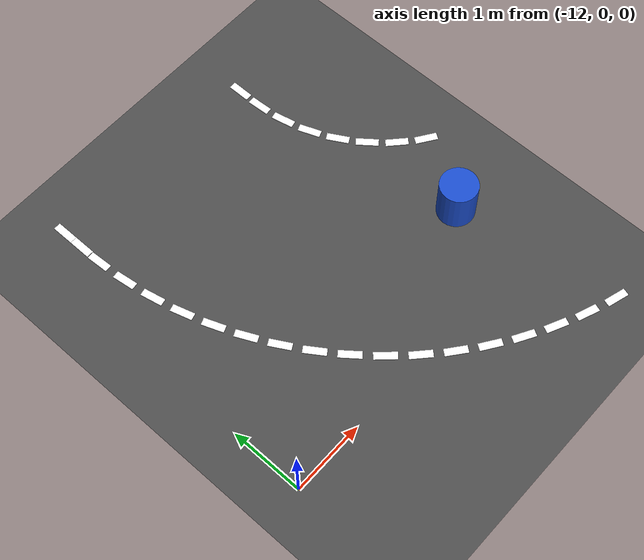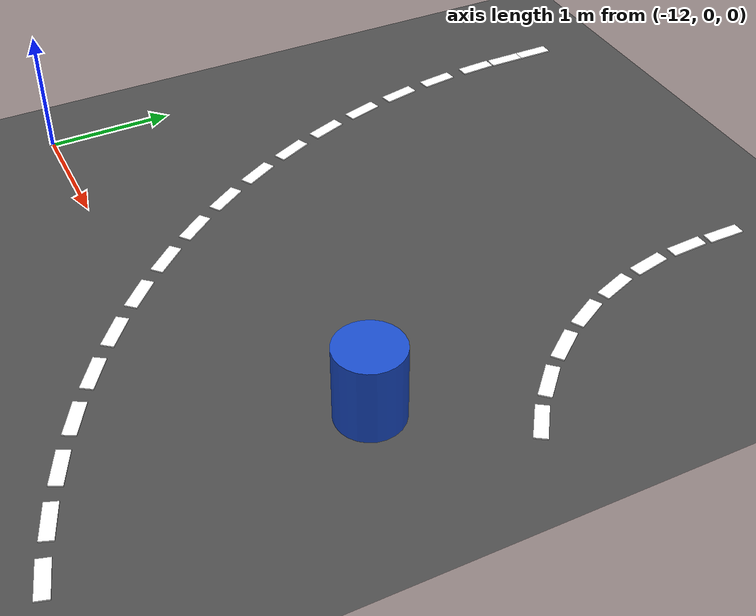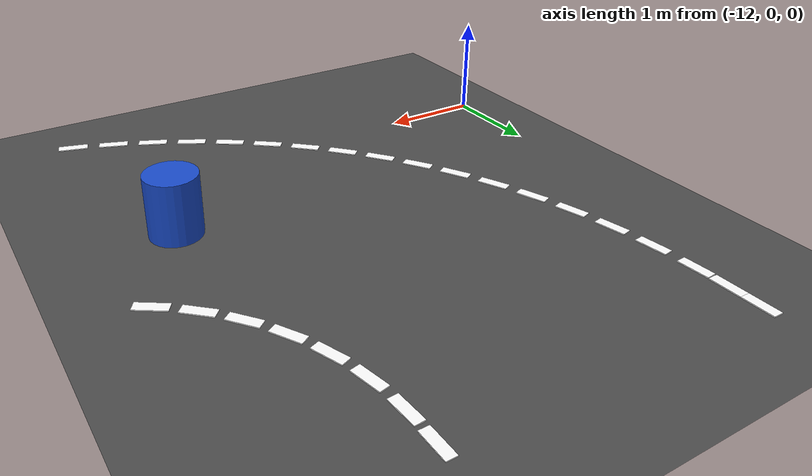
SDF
<sdf version="1.8">
 <world name="igvc_autonav">
  <model name="ground_plane">
   <static>true</static>
   <link name="link">
    <collision name="collision">
     <geometry><plane><normal>0 0 1</normal><size>60 60</size></plane></geometry>
     <surface><friction><ode><mu>0.8</mu><mu2>0.8</mu2></ode></friction></surface>
    </collision>
    <visual name="visual">
     <geometry><plane><normal>0 0 1</normal><size>60 60</size></plane></geometry>
     <material>
      <ambient>0.25 0.25 0.25 1</ambient>
      <diffuse>0.3 0.3 0.3 1</diffuse>
      <specular>0.1 0.1 0.1 1</specular>
     </material>
    </visual>
   </link>
  </model>
  <model name="lane_inner_179">
   <static>true</static>
   <pose>-8.5000 4.2500 0.01 0 0 -1.5708</pose>
   <link name="link">
    <visual name="visual">
     <geometry><box><size>0.3 0.1 0.01</size></box></geometry>
     <material><ambient>1 1 1 1</ambient><diffuse>1 1 1 1</diffuse><emissive>1 1 1 1</emissive></material>
    </visual>
   </link>
  </model>
  <model name="lane_inner_180">
   <static>true</static>
   <pose>-8.4982 3.9042 0.01 0 0 -1.5133</pose>
   <link name="link">
    <visual name="visual">
     <geometry><box><size>0.3 0.1 0.01</size></box></geometry>
     <material><ambient>1 1 1 1</ambient><diffuse>1 1 1 1</diffuse><emissive>1 1 1 1</emissive></material>
    </visual>
   </link>
  </model>
  <model name="lane_inner_181">
   <static>true</static>
   <pose>-8.4543 3.5240 0.01 0 0 -1.3601</pose>
   <link name="link">
    <visual name="visual">
     <geometry><box><size>0.3 0.1 0.01</size></box></geometry>
     <material><ambient>1 1 1 1</ambient><diffuse>1 1 1 1</diffuse><emissive>1 1 1 1</emissive></material>
    </visual>
   </link>
  </model>
  <model name="lane_inner_182">
   <static>true</static>
   <pose>-8.3529 3.1550 0.01 0 0 -1.2068</pose>
   <link name="link">
    <visual name="visual">
     <geometry><box><size>0.3 0.1 0.01</size></box></geometry>
     <material><ambient>1 1 1 1</ambient><diffuse>1 1 1 1</diffuse><emissive>1 1 1 1</emissive></material>
    </visual>
   </link>
  </model>
  <model name="lane_inner_183">
   <static>true</static>
   <pose>-8.1963 2.8057 0.01 0 0 -1.0536</pose>
   <link name="link">
    <visual name="visual">
     <geometry><box><size>0.3 0.1 0.01</size></box></geometry>
     <material><ambient>1 1 1 1</ambient><diffuse>1 1 1 1</diffuse><emissive>1 1 1 1</emissive></material>
    </visual>
   </link>
  </model>
  <model name="lane_inner_184">
   <static>true</static>
   <pose>-7.9882 2.4844 0.01 0 0 -0.9003</pose>
   <link name="link">
    <visual name="visual">
     <geometry><box><size>0.3 0.1 0.01</size></box></geometry>
     <material><ambient>1 1 1 1</ambient><diffuse>1 1 1 1</diffuse><emissive>1 1 1 1</emissive></material>
    </visual>
   </link>
  </model>
  <model name="lane_inner_185">
   <static>true</static>
   <pose>-7.7336 2.1987 0.01 0 0 -0.7471</pose>
   <link name="link">
    <visual name="visual">
     <geometry><box><size>0.3 0.1 0.01</size></box></geometry>
     <material><ambient>1 1 1 1</ambient><diffuse>1 1 1 1</diffuse><emissive>1 1 1 1</emissive></material>
    </visual>
   </link>
  </model>
  <model name="lane_inner_186">
   <static>true</static>
   <pose>-7.4383 1.9552 0.01 0 0 -0.5938</pose>
   <link name="link">
    <visual name="visual">
     <geometry><box><size>0.3 0.1 0.01</size></box></geometry>
     <material><ambient>1 1 1 1</ambient><diffuse>1 1 1 1</diffuse><emissive>1 1 1 1</emissive></material>
    </visual>
   </link>
  </model>
  <model name="lane_outer_211">
   <static>true</static>
   <pose>-11.5000 4.4000 0.01 0 0 -1.5708</pose>
   <link name="link">
    <visual name="visual">
     <geometry><box><size>0.3 0.1 0.01</size></box></geometry>
     <material><ambient>1 1 1 1</ambient><diffuse>1 1 1 1</diffuse><emissive>1 1 1 1</emissive></material>
    </visual>
   </link>
  </model>
  <model name="lane_outer_212">
   <static>true</static>
   <pose>-11.5000 4.1000 0.01 0 0 -1.5699</pose>
   <link name="link">
    <visual name="visual">
     <geometry><box><size>0.3 0.1 0.01</size></box></geometry>
     <material><ambient>1 1 1 1</ambient><diffuse>1 1 1 1</diffuse><emissive>1 1 1 1</emissive></material>
    </visual>
   </link>
  </model>
  <model name="lane_outer_213">
   <static>true</static>
   <pose>-11.4960 3.7893 0.01 0 0 -1.5133</pose>
   <link name="link">
    <visual name="visual">
     <geometry><box><size>0.3 0.1 0.01</size></box></geometry>
     <material><ambient>1 1 1 1</ambient><diffuse>1 1 1 1</diffuse><emissive>1 1 1 1</emissive></material>
    </visual>
   </link>
  </model>
  <model name="lane_outer_214">
   <static>true</static>
   <pose>-11.4637 3.3692 0.01 0 0 -1.4367</pose>
   <link name="link">
    <visual name="visual">
     <geometry><box><size>0.3 0.1 0.01</size></box></geometry>
     <material><ambient>1 1 1 1</ambient><diffuse>1 1 1 1</diffuse><emissive>1 1 1 1</emissive></material>
    </visual>
   </link>
  </model>
  <model name="lane_outer_215">
   <static>true</static>
   <pose>-11.3994 2.9528 0.01 0 0 -1.3601</pose>
   <link name="link">
    <visual name="visual">
     <geometry><box><size>0.3 0.1 0.01</size></box></geometry>
     <material><ambient>1 1 1 1</ambient><diffuse>1 1 1 1</diffuse><emissive>1 1 1 1</emissive></material>
    </visual>
   </link>
  </model>
  <model name="lane_outer_216">
   <static>true</static>
   <pose>-11.3034 2.5426 0.01 0 0 -1.2835</pose>
   <link name="link">
    <visual name="visual">
     <geometry><box><size>0.3 0.1 0.01</size></box></geometry>
     <material><ambient>1 1 1 1</ambient><diffuse>1 1 1 1</diffuse><emissive>1 1 1 1</emissive></material>
    </visual>
   </link>
  </model>
  <model name="lane_outer_217">
   <static>true</static>
   <pose>-11.1763 2.1409 0.01 0 0 -1.2068</pose>
   <link name="link">
    <visual name="visual">
     <geometry><box><size>0.3 0.1 0.01</size></box></geometry>
     <material><ambient>1 1 1 1</ambient><diffuse>1 1 1 1</diffuse><emissive>1 1 1 1</emissive></material>
    </visual>
   </link>
  </model>
  <model name="lane_outer_218">
   <static>true</static>
   <pose>-11.0188 1.7501 0.01 0 0 -1.1302</pose>
   <link name="link">
    <visual name="visual">
     <geometry><box><size>0.3 0.1 0.01</size></box></geometry>
     <material><ambient>1 1 1 1</ambient><diffuse>1 1 1 1</diffuse><emissive>1 1 1 1</emissive></material>
    </visual>
   </link>
  </model>
  <model name="lane_outer_219">
   <static>true</static>
   <pose>-10.8318 1.3725 0.01 0 0 -1.0536</pose>
   <link name="link">
    <visual name="visual">
     <geometry><box><size>0.3 0.1 0.01</size></box></geometry>
     <material><ambient>1 1 1 1</ambient><diffuse>1 1 1 1</diffuse><emissive>1 1 1 1</emissive></material>
    </visual>
   </link>
  </model>
  <model name="lane_outer_220">
   <static>true</static>
   <pose>-10.6165 1.0104 0.01 0 0 -0.9770</pose>
   <link name="link">
    <visual name="visual">
     <geometry><box><size>0.3 0.1 0.01</size></box></geometry>
     <material><ambient>1 1 1 1</ambient><diffuse>1 1 1 1</diffuse><emissive>1 1 1 1</emissive></material>
    </visual>
   </link>
  </model>
  <model name="lane_outer_221">
   <static>true</static>
   <pose>-10.3741 0.6658 0.01 0 0 -0.9003</pose>
   <link name="link">
    <visual name="visual">
     <geometry><box><size>0.3 0.1 0.01</size></box></geometry>
     <material><ambient>1 1 1 1</ambient><diffuse>1 1 1 1</diffuse><emissive>1 1 1 1</emissive></material>
    </visual>
   </link>
  </model>
  <model name="lane_outer_222">
   <static>true</static>
   <pose>-10.1060 0.3407 0.01 0 0 -0.8237</pose>
   <link name="link">
    <visual name="visual">
     <geometry><box><size>0.3 0.1 0.01</size></box></geometry>
     <material><ambient>1 1 1 1</ambient><diffuse>1 1 1 1</diffuse><emissive>1 1 1 1</emissive></material>
    </visual>
   </link>
  </model>
  <model name="lane_outer_223">
   <static>true</static>
   <pose>-9.8139 0.0371 0.01 0 0 -0.7471</pose>
   <link name="link">
    <visual name="visual">
     <geometry><box><size>0.3 0.1 0.01</size></box></geometry>
     <material><ambient>1 1 1 1</ambient><diffuse>1 1 1 1</diffuse><emissive>1 1 1 1</emissive></material>
    </visual>
   </link>
  </model>
  <model name="lane_outer_224">
   <static>true</static>
   <pose>-9.4993 -0.2432 0.01 0 0 -0.6705</pose>
   <link name="link">
    <visual name="visual">
     <geometry><box><size>0.3 0.1 0.01</size></box></geometry>
     <material><ambient>1 1 1 1</ambient><diffuse>1 1 1 1</diffuse><emissive>1 1 1 1</emissive></material>
    </visual>
   </link>
  </model>
  <model name="lane_outer_225">
   <static>true</static>
   <pose>-9.1643 -0.4986 0.01 0 0 -0.5938</pose>
   <link name="link">
    <visual name="visual">
     <geometry><box><size>0.3 0.1 0.01</size></box></geometry>
     <material><ambient>1 1 1 1</ambient><diffuse>1 1 1 1</diffuse><emissive>1 1 1 1</emissive></material>
    </visual>
   </link>
  </model>
  <model name="lane_outer_226">
   <static>true</static>
   <pose>-8.8106 -0.7276 0.01 0 0 -0.5172</pose>
   <link name="link">
    <visual name="visual">
     <geometry><box><size>0.3 0.1 0.01</size></box></geometry>
     <material><ambient>1 1 1 1</ambient><diffuse>1 1 1 1</diffuse><emissive>1 1 1 1</emissive></material>
    </visual>
   </link>
  </model>
  <model name="lane_outer_227">
   <static>true</static>
   <pose>-8.4405 -0.9289 0.01 0 0 -0.4406</pose>
   <link name="link">
    <visual name="visual">
     <geometry><box><size>0.3 0.1 0.01</size></box></geometry>
     <material><ambient>1 1 1 1</ambient><diffuse>1 1 1 1</diffuse><emissive>1 1 1 1</emissive></material>
    </visual>
   </link>
  </model>
  <model name="lane_outer_228">
   <static>true</static>
   <pose>-8.0560 -1.1013 0.01 0 0 -0.3640</pose>
   <link name="link">
    <visual name="visual">
     <geometry><box><size>0.3 0.1 0.01</size></box></geometry>
     <material><ambient>1 1 1 1</ambient><diffuse>1 1 1 1</diffuse><emissive>1 1 1 1</emissive></material>
    </visual>
   </link>
  </model>
  <model name="lane_outer_229">
   <static>true</static>
   <pose>-7.6595 -1.2437 0.01 0 0 -0.2873</pose>
   <link name="link">
    <visual name="visual">
     <geometry><box><size>0.3 0.1 0.01</size></box></geometry>
     <material><ambient>1 1 1 1</ambient><diffuse>1 1 1 1</diffuse><emissive>1 1 1 1</emissive></material>
    </visual>
   </link>
  </model>
  <include><uri>model://barrel</uri><name>barrel_minspeed</name><pose>-8 1 0 0 0 0</pose></include>
 </world>
</sdf>
